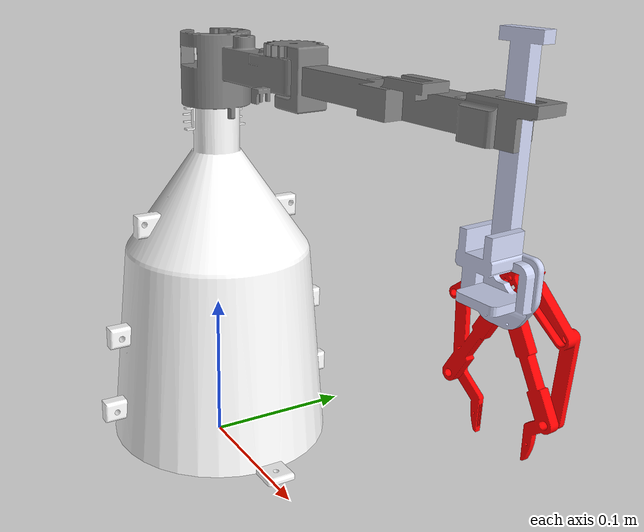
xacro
<?xml version="1.0" encoding="utf-8"?>
<robot
  name="brazo_estesi">
  <link name="world"/>
  <link name="base_link"/>
  <joint name="world_to_base" type="fixed">
    <parent link="world"/>
    <child link="base_link"/>
    <origin xyz="0 0 0.25" rpy="0 0 0"/>
  </joint>
  <joint name="base_to_L1" type="fixed">
    <parent link="base_link"/>
    <child link="L1"/>
    <origin xyz="-0.127896009874116 1.16193522887873 0" rpy="0 0 0"/>
  </joint>
  <link
    name="L1">
    <inertial>
      <origin
        xyz="0.128393926190121 -1.16163581395306 -0.168880072557555"
        rpy="0 0 0" />
      <mass
        value="0.604522875056084" />
      <inertia
        ixx="0.00271186389837995"
        ixy="2.85888682080388E-06"
        ixz="1.16893656112144E-05"
        iyy="0.00215046210528985"
        iyz="1.30647520185808E-05"
        izz="0.00103282320497863" />
    </inertial>
    <visual>
      <origin
        xyz="0 0 0"
        rpy="0 0 0" />
      <geometry>
        <mesh
          filename="package://brazo_estesi/meshes/L1.STL" />
      </geometry>
      <material
        name="">
        <color
          rgba="1 1 1 1" />
      </material>
    </visual>
    <collision>
      <origin
        xyz="0 0 0"
        rpy="0 0 0" />
      <geometry>
        <mesh
          filename="package://brazo_estesi/meshes/L1.STL" />
      </geometry>
    </collision>
  </link>
  <link
    name="L2">
    <inertial>
      <origin
        xyz="0.00183376148423409 0.0101548891861228 -0.0200144950699674"
        rpy="0 0 0" />
      <mass
        value="0.0591549138682919" />
      <inertia
        ixx="6.07188510735423E-05"
        ixy="-5.55184240946354E-07"
        ixz="4.30842989865861E-06"
        iyy="5.93304030642387E-05"
        iyz="6.05855615802466E-06"
        izz="1.4085860142561E-05" />
    </inertial>
    <visual>
      <origin
        xyz="0 0 0"
        rpy="0 0 0" />
      <geometry>
        <mesh
          filename="package://brazo_estesi/meshes/L2.STL" />
      </geometry>
      <material
        name="">
        <color
          rgba="0.501960784313725 0.501960784313725 0.501960784313725 1" />
      </material>
    </visual>
    <collision>
      <origin
        xyz="0 0 0"
        rpy="0 0 0" />
      <geometry>
        <mesh
          filename="package://brazo_estesi/meshes/L2.STL" />
      </geometry>
    </collision>
  </link>
  <joint
    name="M1"
    type="revolute">
    <origin
      xyz="0.127896009874116 -1.16193522887873 0"
      rpy="1.5707963267949 0 -1.40237906021712" />
    <parent
      link="L1" />
    <child
      link="L2" />
    <axis
      xyz="0 1 0" />
    <limit lower="-3.1416" upper="3.1416" effort="10.0" velocity="2.0"/>
  </joint>
  <link
    name="L3">
    <inertial>
      <origin
        xyz="0.00219517524266499 0.0186460328175688 -0.0735285750997385"
        rpy="0 0 0" />
      <mass
        value="0.052189018536357" />
      <inertia
        ixx="5.76204710171982E-05"
        ixy="-1.12213856373519E-07"
        ixz="4.39916909865422E-06"
        iyy="5.68694740316304E-05"
        iyz="8.13596930570712E-07"
        izz="5.21909170068633E-06" />
    </inertial>
    <visual>
      <origin
        xyz="0 0 -0.04"
        rpy="0 0 0" />
      <geometry>
        <mesh
          filename="package://brazo_estesi/meshes/L3.STL" />
      </geometry>
      <material
        name="">
        <color
          rgba="0.501960784313725 0.501960784313725 0.501960784313725 1" />
      </material>
    </visual>
    <collision>
      <origin
        xyz="0 0 -0.04"
        rpy="0 0 0" />
      <geometry>
        <mesh
          filename="package://brazo_estesi/meshes/L3.STL" />
      </geometry>
    </collision>
  </link>
  <joint
    name="M2"
    type="revolute">
    <origin
      xyz="0.00770908065274314 -0.0020661 -0.0841505198890151"
      rpy="0 -0.095041 0" />
    <parent
      link="L2" />
    <child
      link="L3" />
    <axis
      xyz="0 -1 0" />
    <limit
      lower="-2.8"
      upper="2.8"
      effort="10.0"
      velocity="2.0" />
  </joint>
  <link
    name="L4">
    <inertial>
      <origin
        xyz="-0.0597576203287019 -0.0236900852046714 0.00486952188404821"
        rpy="0 0 0" />
      <mass
        value="0.017254670325252" />
      <inertia
        ixx="6.48042582168925E-06"
        ixy="1.13075941983099E-08"
        ixz="9.59783637765118E-09"
        iyy="1.45055356512112E-06"
        iyz="2.55485394453776E-07"
        izz="7.05012379842893E-06" />
    </inertial>
    <visual>
      <origin
        xyz="0 0 0"
        rpy="0 0 0" />
      <geometry>
        <mesh
          filename="package://brazo_estesi/meshes/L4.STL" />
      </geometry>
      <material
        name="">
        <color
          rgba="0.792156862745098 0.819607843137255 0.933333333333333 1" />
      </material>
    </visual>
    <collision>
      <origin
        xyz="0 0 0"
        rpy="0 0 0" />
      <geometry>
        <mesh
          filename="package://brazo_estesi/meshes/L4.STL" />
      </geometry>
    </collision>
  </link>
  <joint
    name="M3"
    type="prismatic">
    <origin
      xyz="0.0096648 0.0020661 -0.10743"
      rpy="3.1416 -1.4717 3.1416" />
    <parent
      link="L3" />
    <child
      link="L4" />
    <axis
      xyz="0 -1 0" />
    <limit
      lower="0.0"
      upper="0.05"
      effort="50.0"
      velocity="0.05" />
  </joint>
  <link
    name="GRIPPER">
    <inertial>
      <origin
        xyz="0.0097478774562163 -0.0196682697244891 -0.022439892106549"
        rpy="0 0 0" />
      <mass
        value="0.00878399896568983" />
      <inertia
        ixx="2.1259658233184E-06"
        ixy="1.64556904802018E-09"
        ixz="-4.700249241313E-10"
        iyy="8.80045470917581E-07"
        iyz="-5.16590391811154E-07"
        izz="1.27571294773354E-06" />
    </inertial>
    <visual>
      <origin
        xyz="0 0 0"
        rpy="0 0 0" />
      <geometry>
        <mesh
          filename="package://brazo_estesi/meshes/GRIPPER.STL" />
      </geometry>
      <material
        name="">
        <color
          rgba="1 0 0 1" />
      </material>
    </visual>
    <collision>
      <origin
        xyz="0 0 0"
        rpy="0 0 0" />
      <geometry>
        <mesh
          filename="package://brazo_estesi/meshes/GRIPPER.STL" />
      </geometry>
    </collision>
  </link>
  <joint
    name="M4"
    type="fixed">
    <origin
      xyz="-0.0669879990575907 -0.0501730970086299 0.00628344963273508"
      rpy="-0.593868335546696 -1.47173801303938 0" />
    <parent
      link="L4" />
    <child
      link="GRIPPER" />
    <axis
      xyz="1 0 0" />
  </joint>
  <!-- Punto de trabajo calibrado: centro geométrico visible de la pinza. -->
  <link name="tcp_gripper"/>
  <joint name="gripper_to_tcp" type="fixed">
    <parent link="GRIPPER"/>
    <child link="tcp_gripper"/>
    <origin xyz="0.0098620525 -0.0264187241 -0.0253115823" rpy="0 0 0"/>
  </joint>
  <ros2_control name="GazeboSimSystem" type="system">
    <hardware>
      <plugin>gz_ros2_control/GazeboSimSystem</plugin>
    </hardware>
    <joint name="M1">
      <command_interface name="position"/>
      <state_interface name="position">
        <param name="initial_value">0.0</param>
      </state_interface>
      <state_interface name="velocity"/>
    </joint>
    <joint name="M2">
      <command_interface name="position"/>
      <state_interface name="position">
        <param name="initial_value">0.0</param>
      </state_interface>
      <state_interface name="velocity"/>
    </joint>
    <joint name="M3">
      <command_interface name="position"/>
      <state_interface name="position">
        <param name="initial_value">0.0</param>
      </state_interface>
      <state_interface name="velocity"/>
    </joint>
  </ros2_control>
  <gazebo>
    <plugin filename="gz_ros2_control-system" name="gz_ros2_control::GazeboSimROS2ControlPlugin">
      <ros>
        <namespace>brazo_estesi</namespace>
        <remapping>robot_description:=/brazo_estesi/robot_description</remapping>
      </ros>
      <parameters>$(find brazo_estesi)/config/ros2_controllers.yaml</parameters>
    </plugin>
  </gazebo>
</robot>
